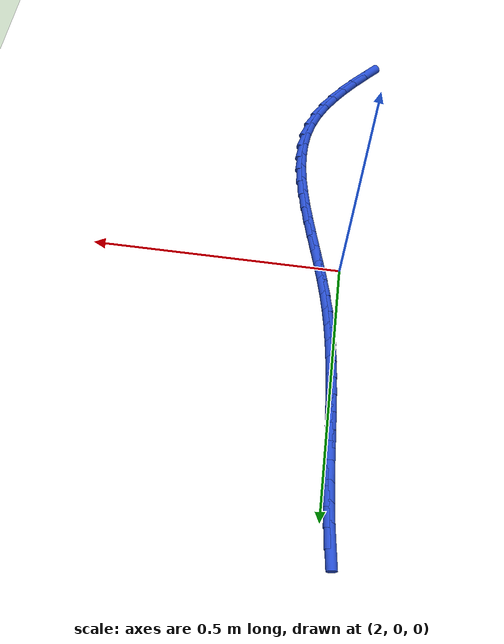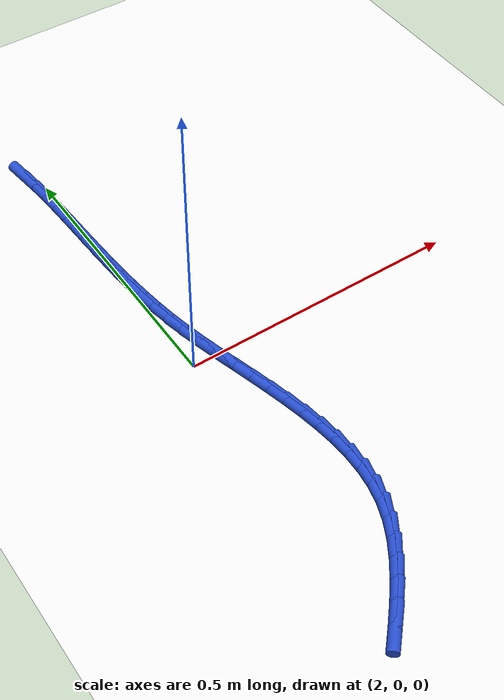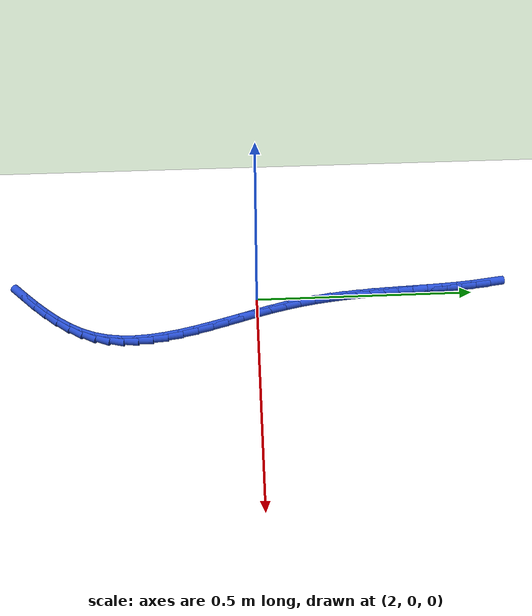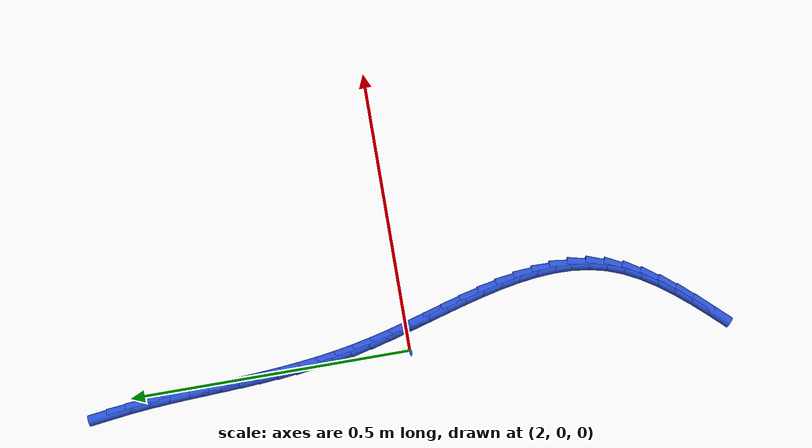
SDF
<sdf version="1.6">
 <world name="default">
  <model name="ground_plane">
   <static>1</static>
   <link name="link">
    <collision name="collision">
     <geometry><plane><normal>0 0 1</normal><size>100 100</size></plane></geometry>
     <surface><friction><ode><mu>100</mu><mu2>50</mu2></ode></friction></surface>
    </collision>
    <visual name="visual">
     <cast_shadows>0</cast_shadows>
     <geometry><plane><normal>0 0 1</normal><size>100 100</size></plane></geometry>
     <material>
      <script><uri>file://media/materials/scripts/gazebo.material</uri><name>Gazebo/WhiteGlow</name></script>
     </material>
    </visual>
   </link>
  </model>
  <model name="line">
   <link name="link_83">
    <pose>1.9796591612716676 0.5372853562135881 0.01 0 1.57 -1.446708876610084</pose>
    <collision name="collision">
     <geometry><cylinder><radius>0.01</radius><length>0.08</length></cylinder></geometry>
    </collision>
    <visual name="visual">
     <material>
      <script><name>Gazebo/Blue</name><uri>file://media/materials/scripts/gazebo.material</uri></script>
     </material>
     <geometry><cylinder><radius>0.01</radius><length>0.08</length></cylinder></geometry>
    </visual>
   </link>
   <link name="link_84">
    <pose>1.9839020130778149 0.5032685986780432 0.01 0 1.57 -1.477806476081648</pose>
    <collision name="collision">
     <geometry><cylinder><radius>0.01</radius><length>0.08</length></cylinder></geometry>
    </collision>
    <visual name="visual">
     <material>
      <script><name>Gazebo/Blue</name><uri>file://media/materials/scripts/gazebo.material</uri></script>
     </material>
     <geometry><cylinder><radius>0.01</radius><length>0.08</length></cylinder></geometry>
    </visual>
   </link>
   <link name="link_85">
    <pose>1.9870957696468492 0.46902243479197714 0.01 0 1.57 -1.5007219454036858</pose>
    <collision name="collision">
     <geometry><cylinder><radius>0.01</radius><length>0.08</length></cylinder></geometry>
    </collision>
    <visual name="visual">
     <material>
      <script><name>Gazebo/Blue</name><uri>file://media/materials/scripts/gazebo.material</uri></script>
     </material>
     <geometry><cylinder><radius>0.01</radius><length>0.08</length></cylinder></geometry>
    </visual>
   </link>
   <link name="link_86">
    <pose>1.9895049645411664 0.43469819004451843 0.01 0 1.57 -1.5156956145295342</pose>
    <collision name="collision">
     <geometry><cylinder><radius>0.01</radius><length>0.08</length></cylinder></geometry>
    </collision>
    <visual name="visual">
     <material>
      <script><name>Gazebo/Blue</name><uri>file://media/materials/scripts/gazebo.material</uri></script>
     </material>
     <geometry><cylinder><radius>0.01</radius><length>0.08</length></cylinder></geometry>
    </visual>
   </link>
   <link name="link_87">
    <pose>1.9913941313231633 0.4004471899247946 0.01 0 1.57 -1.5228408383075995</pose>
    <collision name="collision">
     <geometry><cylinder><radius>0.01</radius><length>0.08</length></cylinder></geometry>
    </collision>
    <visual name="visual">
     <material>
      <script><name>Gazebo/Blue</name><uri>file://media/materials/scripts/gazebo.material</uri></script>
     </material>
     <geometry><cylinder><radius>0.01</radius><length>0.08</length></cylinder></geometry>
    </visual>
   </link>
   <link name="link_88">
    <pose>1.9930271979392864 0.36641949871628443 0.01 0 1.57 -1.5233449836789814</pose>
    <collision name="collision">
     <geometry><cylinder><radius>0.01</radius><length>0.08</length></cylinder></geometry>
    </collision>
    <visual name="visual">
     <material>
      <script><name>Gazebo/Blue</name><uri>file://media/materials/scripts/gazebo.material</uri></script>
     </material>
     <geometry><cylinder><radius>0.01</radius><length>0.08</length></cylinder></geometry>
    </visual>
   </link>
   <link name="link_89">
    <pose>1.9946291875739375 0.3326841608651299 0.01 0 1.57 -1.5190822033623217</pose>
    <collision name="collision">
     <geometry><cylinder><radius>0.01</radius><length>0.08</length></cylinder></geometry>
    </collision>
    <visual name="visual">
     <material>
      <script><name>Gazebo/Blue</name><uri>file://media/materials/scripts/gazebo.material</uri></script>
     </material>
     <geometry><cylinder><radius>0.01</radius><length>0.08</length></cylinder></geometry>
    </visual>
   </link>
   <link name="link_90">
    <pose>1.996363296283015 0.29918146475699925 0.01 0 1.57 -1.510167396439507</pose>
    <collision name="collision">
     <geometry><cylinder><radius>0.01</radius><length>0.08</length></cylinder></geometry>
    </collision>
    <visual name="visual">
     <material>
      <script><name>Gazebo/Blue</name><uri>file://media/materials/scripts/gazebo.material</uri></script>
     </material>
     <geometry><cylinder><radius>0.01</radius><length>0.08</length></cylinder></geometry>
    </visual>
   </link>
   <link name="link_91">
    <pose>1.9983872193712962 0.26584024336857126 0.01 0 1.57 -1.496605984101501</pose>
    <collision name="collision">
     <geometry><cylinder><radius>0.01</radius><length>0.08</length></cylinder></geometry>
    </collision>
    <visual name="visual">
     <material>
      <script><name>Gazebo/Blue</name><uri>file://media/materials/scripts/gazebo.material</uri></script>
     </material>
     <geometry><cylinder><radius>0.01</radius><length>0.08</length></cylinder></geometry>
    </visual>
   </link>
   <link name="link_92">
    <pose>2.000858652143558 0.23258932967652476 0.01 0 1.57 -1.478478277776199</pose>
    <collision name="collision">
     <geometry><cylinder><radius>0.01</radius><length>0.08</length></cylinder></geometry>
    </collision>
    <visual name="visual">
     <material>
      <script><name>Gazebo/Blue</name><uri>file://media/materials/scripts/gazebo.material</uri></script>
     </material>
     <geometry><cylinder><radius>0.01</radius><length>0.08</length></cylinder></geometry>
    </visual>
   </link>
   <link name="link_93">
    <pose>2.00393528990458 0.19935755665753882 0.01 0 1.57 -1.4559464162789537</pose>
    <collision name="collision">
     <geometry><cylinder><radius>0.01</radius><length>0.08</length></cylinder></geometry>
    </collision>
    <visual name="visual">
     <material>
      <script><name>Gazebo/Blue</name><uri>file://media/materials/scripts/gazebo.material</uri></script>
     </material>
     <geometry><cylinder><radius>0.01</radius><length>0.08</length></cylinder></geometry>
    </visual>
   </link>
   <link name="link_94">
    <pose>2.00777482795914 0.16607375728829202 0.01 0 1.57 -1.4292599339389893</pose>
    <collision name="collision">
     <geometry><cylinder><radius>0.01</radius><length>0.08</length></cylinder></geometry>
    </collision>
    <visual name="visual">
     <material>
      <script><name>Gazebo/Blue</name><uri>file://media/materials/scripts/gazebo.material</uri></script>
     </material>
     <geometry><cylinder><radius>0.01</radius><length>0.08</length></cylinder></geometry>
    </visual>
   </link>
   <link name="link_95">
    <pose>2.012534961612015 0.13266676454546353 0.01 0 1.57 -1.3987583006290591</pose>
    <collision name="collision">
     <geometry><cylinder><radius>0.01</radius><length>0.08</length></cylinder></geometry>
    </collision>
    <visual name="visual">
     <material>
      <script><name>Gazebo/Blue</name><uri>file://media/materials/scripts/gazebo.material</uri></script>
     </material>
     <geometry><cylinder><radius>0.01</radius><length>0.08</length></cylinder></geometry>
    </visual>
   </link>
   <link name="link_96">
    <pose>2.018373386167985 0.09906541140573244 0.01 0 1.57 -1.3648761212926634</pose>
    <collision name="collision">
     <geometry><cylinder><radius>0.01</radius><length>0.08</length></cylinder></geometry>
    </collision>
    <visual name="visual">
     <material>
      <script><name>Gazebo/Blue</name><uri>file://media/materials/scripts/gazebo.material</uri></script>
     </material>
     <geometry><cylinder><radius>0.01</radius><length>0.08</length></cylinder></geometry>
    </visual>
   </link>
   <link name="link_97">
    <pose>2.0254475161779903 0.06519861445266802 0.01 0 1.57 -1.331668918243753</pose>
    <collision name="collision">
     <geometry><cylinder><radius>0.01</radius><length>0.08</length></cylinder></geometry>
    </collision>
    <visual name="visual">
     <material>
      <script><name>Gazebo/Blue</name><uri>file://media/materials/scripts/gazebo.material</uri></script>
     </material>
     <geometry><cylinder><radius>0.01</radius><length>0.08</length></cylinder></geometry>
    </visual>
   </link>
   <link name="link_98">
    <pose>2.033775935696008 0.03103663320011315 0.01 0 1.57 -1.3082714882466349</pose>
    <collision name="collision">
     <geometry><cylinder><radius>0.01</radius><length>0.08</length></cylinder></geometry>
    </collision>
    <visual name="visual">
     <material>
      <script><name>Gazebo/Blue</name><uri>file://media/materials/scripts/gazebo.material</uri></script>
     </material>
     <geometry><cylinder><radius>0.01</radius><length>0.08</length></cylinder></geometry>
    </visual>
   </link>
   <link name="link_99">
    <pose>2.043014463964983 -0.0033422435461452 0.01 0 1.57 -1.2954796317982198</pose>
    <collision name="collision">
     <geometry><cylinder><radius>0.01</radius><length>0.08</length></cylinder></geometry>
    </collision>
    <visual name="visual">
     <material>
      <script><name>Gazebo/Blue</name><uri>file://media/materials/scripts/gazebo.material</uri></script>
     </material>
     <geometry><cylinder><radius>0.01</radius><length>0.08</length></cylinder></geometry>
    </visual>
   </link>
   <link name="link_100">
    <pose>2.052760404331636 -0.03784230128012907 0.01 0 1.57 -1.2928657004499193</pose>
    <collision name="collision">
     <geometry><cylinder><radius>0.01</radius><length>0.08</length></cylinder></geometry>
    </collision>
    <visual name="visual">
     <material>
      <script><name>Gazebo/Blue</name><uri>file://media/materials/scripts/gazebo.material</uri></script>
     </material>
     <geometry><cylinder><radius>0.01</radius><length>0.08</length></cylinder></geometry>
    </visual>
   </link>
   <link name="link_101">
    <pose>2.0626110601426846 -0.07236782549586042 0.01 0 1.57 -1.300340881489207</pose>
    <collision name="collision">
     <geometry><cylinder><radius>0.01</radius><length>0.08</length></cylinder></geometry>
    </collision>
    <visual name="visual">
     <material>
      <script><name>Gazebo/Blue</name><uri>file://media/materials/scripts/gazebo.material</uri></script>
     </material>
     <geometry><cylinder><radius>0.01</radius><length>0.08</length></cylinder></geometry>
    </visual>
   </link>
   <link name="link_102">
    <pose>2.072163734744849 -0.10682310168736132 0.01 0 1.57 -1.3181561531831159</pose>
    <collision name="collision">
     <geometry><cylinder><radius>0.01</radius><length>0.08</length></cylinder></geometry>
    </collision>
    <visual name="visual">
     <material>
      <script><name>Gazebo/Blue</name><uri>file://media/materials/scripts/gazebo.material</uri></script>
     </material>
     <geometry><cylinder><radius>0.01</radius><length>0.08</length></cylinder></geometry>
    </visual>
   </link>
   <link name="link_103">
    <pose>2.081015731484849 -0.14111241534865382 0.01 0 1.57 -1.3468986863136536</pose>
    <collision name="collision">
     <geometry><cylinder><radius>0.01</radius><length>0.08</length></cylinder></geometry>
    </collision>
    <visual name="visual">
     <material>
      <script><name>Gazebo/Blue</name><uri>file://media/materials/scripts/gazebo.material</uri></script>
     </material>
     <geometry><cylinder><radius>0.01</radius><length>0.08</length></cylinder></geometry>
    </visual>
   </link>
   <link name="link_104">
    <pose>2.0887643537094034 -0.1751400519737599 0.01 0 1.57 -1.38747530946897</pose>
    <collision name="collision">
     <geometry><cylinder><radius>0.01</radius><length>0.08</length></cylinder></geometry>
    </collision>
    <visual name="visual">
     <material>
      <script><name>Gazebo/Blue</name><uri>file://media/materials/scripts/gazebo.material</uri></script>
     </material>
     <geometry><cylinder><radius>0.01</radius><length>0.08</length></cylinder></geometry>
    </visual>
   </link>
   <link name="link_105">
    <pose>2.095006904765232 -0.20881029705670157 0.01 0 1.57 -1.441060845726249</pose>
    <collision name="collision">
     <geometry><cylinder><radius>0.01</radius><length>0.08</length></cylinder></geometry>
    </collision>
    <visual name="visual">
     <material>
      <script><name>Gazebo/Blue</name><uri>file://media/materials/scripts/gazebo.material</uri></script>
     </material>
     <geometry><cylinder><radius>0.01</radius><length>0.08</length></cylinder></geometry>
    </visual>
   </link>
   <link name="link_106">
    <pose>2.099340687999055 -0.24202743609150087 0.01 0 1.57 -1.5089706350856322</pose>
    <collision name="collision">
     <geometry><cylinder><radius>0.01</radius><length>0.08</length></cylinder></geometry>
    </collision>
    <visual name="visual">
     <material>
      <script><name>Gazebo/Blue</name><uri>file://media/materials/scripts/gazebo.material</uri></script>
     </material>
     <geometry><cylinder><radius>0.01</radius><length>0.08</length></cylinder></geometry>
    </visual>
   </link>
   <link name="link_107">
    <pose>2.10136300675759 -0.2746957545721799 0.01 0 1.57 1.5491956696917462</pose>
    <collision name="collision">
     <geometry><cylinder><radius>0.01</radius><length>0.08</length></cylinder></geometry>
    </collision>
    <visual name="visual">
     <material>
      <script><name>Gazebo/Blue</name><uri>file://media/materials/scripts/gazebo.material</uri></script>
     </material>
     <geometry><cylinder><radius>0.01</radius><length>0.08</length></cylinder></geometry>
    </visual>
   </link>
   <link name="link_108">
    <pose>2.1006711643875575 -0.30671953799276047 0.01 0 1.57 1.44964480972993</pose>
    <collision name="collision">
     <geometry><cylinder><radius>0.01</radius><length>0.08</length></cylinder></geometry>
    </collision>
    <visual name="visual">
     <material>
      <script><name>Gazebo/Blue</name><uri>file://media/materials/scripts/gazebo.material</uri></script>
     </material>
     <geometry><cylinder><radius>0.01</radius><length>0.08</length></cylinder></geometry>
    </visual>
   </link>
   <link name="link_109">
    <pose>2.096862464235678 -0.3380030718472649 0.01 0 1.57 1.3346043359116968</pose>
    <collision name="collision">
     <geometry><cylinder><radius>0.01</radius><length>0.08</length></cylinder></geometry>
    </collision>
    <visual name="visual">
     <material>
      <script><name>Gazebo/Blue</name><uri>file://media/materials/scripts/gazebo.material</uri></script>
     </material>
     <geometry><cylinder><radius>0.01</radius><length>0.08</length></cylinder></geometry>
    </visual>
   </link>
   <link name="link_110">
    <pose>2.089534209648669 -0.36845064162971497 0.01 0 1.57 1.209423610528037</pose>
    <collision name="collision">
     <geometry><cylinder><radius>0.01</radius><length>0.08</length></cylinder></geometry>
    </collision>
    <visual name="visual">
     <material>
      <script><name>Gazebo/Blue</name><uri>file://media/materials/scripts/gazebo.material</uri></script>
     </material>
     <geometry><cylinder><radius>0.01</radius><length>0.08</length></cylinder></geometry>
    </visual>
   </link>
   <link name="link_111">
    <pose>2.0783714708034644 -0.3979839731634288 0.01 0 1.57 1.096923491500316</pose>
    <collision name="collision">
     <geometry><cylinder><radius>0.01</radius><length>0.08</length></cylinder></geometry>
    </collision>
    <visual name="visual">
     <material>
      <script><name>Gazebo/Blue</name><uri>file://media/materials/scripts/gazebo.material</uri></script>
     </material>
     <geometry><cylinder><radius>0.01</radius><length>0.08</length></cylinder></geometry>
    </visual>
   </link>
   <link name="link_112">
    <pose>2.0636719460082817 -0.4266465288813257 0.01 0 1.57 1.0058258915136158</pose>
    <collision name="collision">
     <geometry><cylinder><radius>0.01</radius><length>0.08</length></cylinder></geometry>
    </collision>
    <visual name="visual">
     <material>
      <script><name>Gazebo/Blue</name><uri>file://media/materials/scripts/gazebo.material</uri></script>
     </material>
     <geometry><cylinder><radius>0.01</radius><length>0.08</length></cylinder></geometry>
    </visual>
   </link>
   <link name="link_113">
    <pose>2.045994426526122 -0.4545336535401736 0.01 0 1.57 0.9346194919334821</pose>
    <collision name="collision">
     <geometry><cylinder><radius>0.01</radius><length>0.08</length></cylinder></geometry>
    </collision>
    <visual name="visual">
     <material>
      <script><name>Gazebo/Blue</name><uri>file://media/materials/scripts/gazebo.material</uri></script>
     </material>
     <geometry><cylinder><radius>0.01</radius><length>0.08</length></cylinder></geometry>
    </visual>
   </link>
   <link name="link_114">
    <pose>2.025898672254944 -0.48174088437620666 0.01 0 1.57 0.8812118195374132</pose>
    <collision name="collision">
     <geometry><cylinder><radius>0.01</radius><length>0.08</length></cylinder></geometry>
    </collision>
    <visual name="visual">
     <material>
      <script><name>Gazebo/Blue</name><uri>file://media/materials/scripts/gazebo.material</uri></script>
     </material>
     <geometry><cylinder><radius>0.01</radius><length>0.08</length></cylinder></geometry>
    </visual>
   </link>
   <link name="link_115">
    <pose>2.003944443092711 -0.5083637586256596 0.01 0 1.57 0.843669552036305</pose>
    <collision name="collision">
     <geometry><cylinder><radius>0.01</radius><length>0.08</length></cylinder></geometry>
    </collision>
    <visual name="visual">
     <material>
      <script><name>Gazebo/Blue</name><uri>file://media/materials/scripts/gazebo.material</uri></script>
     </material>
     <geometry><cylinder><radius>0.01</radius><length>0.08</length></cylinder></geometry>
    </visual>
   </link>
   <link name="link_116">
    <pose>1.9806914989373838 -0.5344978135247664 0.01 0 1.57 0.8205491638386662</pose>
    <collision name="collision">
     <geometry><cylinder><radius>0.01</radius><length>0.08</length></cylinder></geometry>
    </collision>
    <visual name="visual">
     <material>
      <script><name>Gazebo/Blue</name><uri>file://media/materials/scripts/gazebo.material</uri></script>
     </material>
     <geometry><cylinder><radius>0.01</radius><length>0.08</length></cylinder></geometry>
    </visual>
   </link>
  </model>
 </world>
</sdf>
